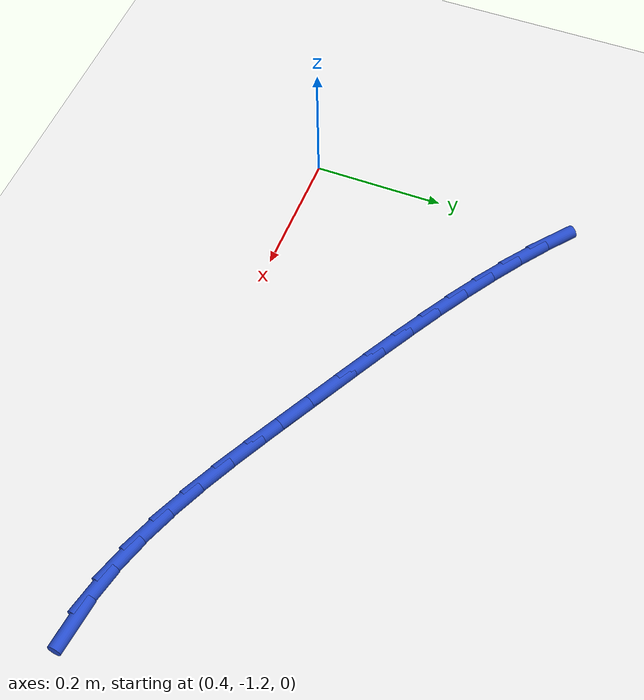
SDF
<sdf version="1.6">
 <world name="default">
  <model name="ground_plane">
   <static>1</static>
   <link name="link">
    <collision name="collision">
     <geometry><plane><normal>0 0 1</normal><size>100 100</size></plane></geometry>
     <surface><friction><ode><mu>100</mu><mu2>50</mu2></ode></friction></surface>
    </collision>
    <visual name="visual">
     <cast_shadows>0</cast_shadows>
     <geometry><plane><normal>0 0 1</normal><size>100 100</size></plane></geometry>
     <material>
      <script><uri>file://media/materials/scripts/gazebo.material</uri><name>Gazebo/WhiteGlow</name></script>
     </material>
    </visual>
   </link>
  </model>
  <model name="line">
   <link name="link_105">
    <pose>1.2250796617366377 -1.206978065010406 0.01 0 1.57 -0.11351216495600913</pose>
    <collision name="collision">
     <geometry><cylinder><radius>0.01</radius><length>0.08</length></cylinder></geometry>
    </collision>
    <visual name="visual">
     <material>
      <script><name>Gazebo/Blue</name><uri>file://media/materials/scripts/gazebo.material</uri></script>
     </material>
     <geometry><cylinder><radius>0.01</radius><length>0.08</length></cylinder></geometry>
    </visual>
   </link>
   <link name="link_106">
    <pose>1.1757215358433961 -1.2013511287836622 0.01 0 1.57 -0.21762252174648516</pose>
    <collision name="collision">
     <geometry><cylinder><radius>0.01</radius><length>0.08</length></cylinder></geometry>
    </collision>
    <visual name="visual">
     <material>
      <script><name>Gazebo/Blue</name><uri>file://media/materials/scripts/gazebo.material</uri></script>
     </material>
     <geometry><cylinder><radius>0.01</radius><length>0.08</length></cylinder></geometry>
    </visual>
   </link>
   <link name="link_107">
    <pose>1.1260289838751736 -1.190362894152379 0.01 0 1.57 -0.3017224764920585</pose>
    <collision name="collision">
     <geometry><cylinder><radius>0.01</radius><length>0.08</length></cylinder></geometry>
    </collision>
    <visual name="visual">
     <material>
      <script><name>Gazebo/Blue</name><uri>file://media/materials/scripts/gazebo.material</uri></script>
     </material>
     <geometry><cylinder><radius>0.01</radius><length>0.08</length></cylinder></geometry>
    </visual>
   </link>
   <link name="link_108">
    <pose>1.0761292070120883 -1.1748328582530612 0.01 0 1.57 -0.36768511791320346</pose>
    <collision name="collision">
     <geometry><cylinder><radius>0.01</radius><length>0.08</length></cylinder></geometry>
    </collision>
    <visual name="visual">
     <material>
      <script><name>Gazebo/Blue</name><uri>file://media/materials/scripts/gazebo.material</uri></script>
     </material>
     <geometry><cylinder><radius>0.01</radius><length>0.08</length></cylinder></geometry>
    </visual>
   </link>
   <link name="link_109">
    <pose>1.0261494064342562 -1.1555805182222136 0.01 0 1.57 -0.4176032136748009</pose>
    <collision name="collision">
     <geometry><cylinder><radius>0.01</radius><length>0.08</length></cylinder></geometry>
    </collision>
    <visual name="visual">
     <material>
      <script><name>Gazebo/Blue</name><uri>file://media/materials/scripts/gazebo.material</uri></script>
     </material>
     <geometry><cylinder><radius>0.01</radius><length>0.08</length></cylinder></geometry>
    </visual>
   </link>
   <link name="link_110">
    <pose>0.9762167833217981 -1.133425371196342 0.01 0 1.57 -0.4532942052950161</pose>
    <collision name="collision">
     <geometry><cylinder><radius>0.01</radius><length>0.08</length></cylinder></geometry>
    </collision>
    <visual name="visual">
     <material>
      <script><name>Gazebo/Blue</name><uri>file://media/materials/scripts/gazebo.material</uri></script>
     </material>
     <geometry><cylinder><radius>0.01</radius><length>0.08</length></cylinder></geometry>
    </visual>
   </link>
   <link name="link_111">
    <pose>0.9264585388548295 -1.1091869143119508 0.01 0 1.57 -0.4760881287699234</pose>
    <collision name="collision">
     <geometry><cylinder><radius>0.01</radius><length>0.08</length></cylinder></geometry>
    </collision>
    <visual name="visual">
     <material>
      <script><name>Gazebo/Blue</name><uri>file://media/materials/scripts/gazebo.material</uri></script>
     </material>
     <geometry><cylinder><radius>0.01</radius><length>0.08</length></cylinder></geometry>
    </visual>
   </link>
   <link name="link_112">
    <pose>0.8770018742134681 -1.0836846447055448 0.01 0 1.57 -0.4867502107642875</pose>
    <collision name="collision">
     <geometry><cylinder><radius>0.01</radius><length>0.08</length></cylinder></geometry>
    </collision>
    <visual name="visual">
     <material>
      <script><name>Gazebo/Blue</name><uri>file://media/materials/scripts/gazebo.material</uri></script>
     </material>
     <geometry><cylinder><radius>0.01</radius><length>0.08</length></cylinder></geometry>
    </visual>
   </link>
   <link name="link_113">
    <pose>0.827973990577831 -1.0577380595136285 0.01 0 1.57 -0.48689991510032676</pose>
    <collision name="collision">
     <geometry><cylinder><radius>0.01</radius><length>0.08</length></cylinder></geometry>
    </collision>
    <visual name="visual">
     <material>
      <script><name>Gazebo/Blue</name><uri>file://media/materials/scripts/gazebo.material</uri></script>
     </material>
     <geometry><cylinder><radius>0.01</radius><length>0.08</length></cylinder></geometry>
    </visual>
   </link>
   <link name="link_114">
    <pose>0.7794964247713851 -1.0320734234432443 0.01 0 1.57 -0.48706905098081915</pose>
    <collision name="collision">
     <geometry><cylinder><radius>0.01</radius><length>0.08</length></cylinder></geometry>
    </collision>
    <visual name="visual">
     <material>
      <script><name>Gazebo/Blue</name><uri>file://media/materials/scripts/gazebo.material</uri></script>
     </material>
     <geometry><cylinder><radius>0.01</radius><length>0.08</length></cylinder></geometry>
    </visual>
   </link>
   <link name="link_115">
    <pose>0.7316491013113953 -1.0067320838064573 0.01 0 1.57 -0.4921400258913429</pose>
    <collision name="collision">
     <geometry><cylinder><radius>0.01</radius><length>0.08</length></cylinder></geometry>
    </collision>
    <visual name="visual">
     <material>
      <script><name>Gazebo/Blue</name><uri>file://media/materials/scripts/gazebo.material</uri></script>
     </material>
     <geometry><cylinder><radius>0.01</radius><length>0.08</length></cylinder></geometry>
    </visual>
   </link>
   <link name="link_116">
    <pose>0.684493391656623 -0.9814500140088993 0.01 0 1.57 -0.5022918736379676</pose>
    <collision name="collision">
     <geometry><cylinder><radius>0.01</radius><length>0.08</length></cylinder></geometry>
    </collision>
    <visual name="visual">
     <material>
      <script><name>Gazebo/Blue</name><uri>file://media/materials/scripts/gazebo.material</uri></script>
     </material>
     <geometry><cylinder><radius>0.01</radius><length>0.08</length></cylinder></geometry>
    </visual>
   </link>
   <link name="link_117">
    <pose>0.6380905818248722 -0.9559617811415061 0.01 0 1.57 -0.5176431493397865</pose>
    <collision name="collision">
     <geometry><cylinder><radius>0.01</radius><length>0.08</length></cylinder></geometry>
    </collision>
    <visual name="visual">
     <material>
      <script><name>Gazebo/Blue</name><uri>file://media/materials/scripts/gazebo.material</uri></script>
     </material>
     <geometry><cylinder><radius>0.01</radius><length>0.08</length></cylinder></geometry>
    </visual>
   </link>
   <link name="link_118">
    <pose>0.5925019578339481 -0.9300019522952143 0.01 0 1.57 -0.5382619075056734</pose>
    <collision name="collision">
     <geometry><cylinder><radius>0.01</radius><length>0.08</length></cylinder></geometry>
    </collision>
    <visual name="visual">
     <material>
      <script><name>Gazebo/Blue</name><uri>file://media/materials/scripts/gazebo.material</uri></script>
     </material>
     <geometry><cylinder><radius>0.01</radius><length>0.08</length></cylinder></geometry>
    </visual>
   </link>
   <link name="link_119">
    <pose>0.5477888057016548 -0.9033050945609608 0.01 0 1.57 -0.5641497841160799</pose>
    <collision name="collision">
     <geometry><cylinder><radius>0.01</radius><length>0.08</length></cylinder></geometry>
    </collision>
    <visual name="visual">
     <material>
      <script><name>Gazebo/Blue</name><uri>file://media/materials/scripts/gazebo.material</uri></script>
     </material>
     <geometry><cylinder><radius>0.01</radius><length>0.08</length></cylinder></geometry>
    </visual>
   </link>
   <link name="link_120">
    <pose>0.5040124114457966 -0.8756057750296813 0.01 0 1.57 -0.5952228879453926</pose>
    <collision name="collision">
     <geometry><cylinder><radius>0.01</radius><length>0.08</length></cylinder></geometry>
    </collision>
    <visual name="visual">
     <material>
      <script><name>Gazebo/Blue</name><uri>file://media/materials/scripts/gazebo.material</uri></script>
     </material>
     <geometry><cylinder><radius>0.01</radius><length>0.08</length></cylinder></geometry>
    </visual>
   </link>
   <link name="link_121">
    <pose>0.46123406108417775 -0.8466385607923125 0.01 0 1.57 -0.6312913202891295</pose>
    <collision name="collision">
     <geometry><cylinder><radius>0.01</radius><length>0.08</length></cylinder></geometry>
    </collision>
    <visual name="visual">
     <material>
      <script><name>Gazebo/Blue</name><uri>file://media/materials/scripts/gazebo.material</uri></script>
     </material>
     <geometry><cylinder><radius>0.01</radius><length>0.08</length></cylinder></geometry>
    </visual>
   </link>
   <link name="link_122">
    <pose>0.419515040634602 -0.8161380189397902 0.01 0 1.57 -0.672040360965626</pose>
    <collision name="collision">
     <geometry><cylinder><radius>0.01</radius><length>0.08</length></cylinder></geometry>
    </collision>
    <visual name="visual">
     <material>
      <script><name>Gazebo/Blue</name><uri>file://media/materials/scripts/gazebo.material</uri></script>
     </material>
     <geometry><cylinder><radius>0.01</radius><length>0.08</length></cylinder></geometry>
    </visual>
   </link>
  </model>
 </world>
</sdf>
